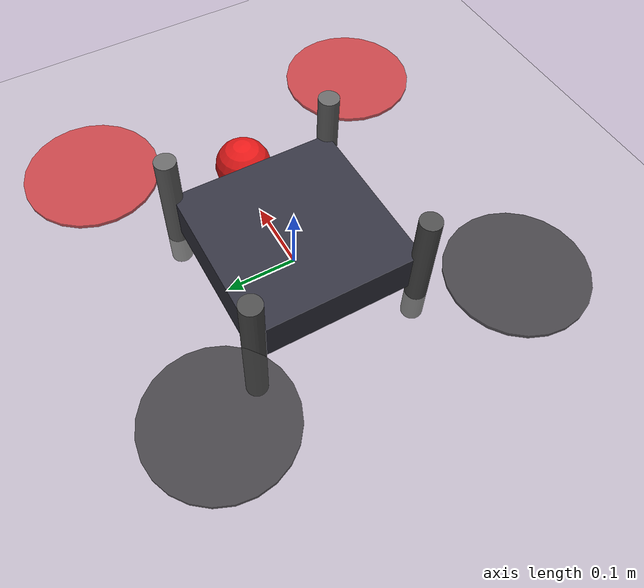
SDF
<?xml version="1.0" encoding="UTF-8"?>
<sdf version="1.6">
  <world name="drone_world">
    <!-- Directional Sun Light -->
    <include>
      <uri>model://sun</uri>
    </include>

    <!-- Ground Plane -->
    <include>
      <uri>model://ground_plane</uri>
    </include>

    <!-- Kinematic visual drone model -->
    <include>
      <uri>model://drone</uri>
      <name>drone</name>
      <pose>0 0 0 0 0 0</pose>
    </include>

    <!-- GUI Camera Position overlooking origin -->
    <gui fullscreen="0">
      <camera name="user_camera">
        <pose>-5.0 -5.0 4.0 0 0.45 0.785</pose>
        <view_controller>orbit</view_controller>
      </camera>
    </gui>
  </world>
</sdf>

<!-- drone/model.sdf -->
<sdf version="1.6">
  <model name="drone">
    <!-- Visual entity only: static prevents Gazebo physics engine from applying dynamics -->
    <static>true</static>
    <link name="base_link">
      <pose>0 0 0.05 0 0 0</pose>

      <!-- Central Body / Fuselage -->
      <visual name="body_visual">
        <geometry>
          <box>
            <size>0.24 0.24 0.06</size>
          </box>
        </geometry>
        <material>
          <ambient>0.2 0.2 0.25 1.0</ambient>
          <diffuse>0.2 0.2 0.25 1.0</diffuse>
        </material>
      </visual>

      <!-- Front Direction Marker (Bright Red Nose on +X axis) -->
      <visual name="front_marker_visual">
        <pose>0.15 0 0 0 0 0</pose>
        <geometry>
          <sphere>
            <radius>0.04</radius>
          </sphere>
        </geometry>
        <material>
          <ambient>0.9 0.1 0.1 1.0</ambient>
          <diffuse>0.9 0.1 0.1 1.0</diffuse>
        </material>
      </visual>

      <!-- Arm 1: Front-Right (+X, -Y) -->
      <visual name="arm_fr_visual">
        <pose>0.12 -0.12 0 0 0 -0.785398</pose>
        <geometry>
          <cylinder>
            <radius>0.015</radius>
            <length>0.20</length>
          </cylinder>
        </geometry>
        <material>
          <ambient>0.4 0.4 0.4 1.0</ambient>
          <diffuse>0.4 0.4 0.4 1.0</diffuse>
        </material>
      </visual>

      <!-- Arm 2: Front-Left (+X, +Y) -->
      <visual name="arm_fl_visual">
        <pose>0.12 0.12 0 0 0 0.785398</pose>
        <geometry>
          <cylinder>
            <radius>0.015</radius>
            <length>0.20</length>
          </cylinder>
        </geometry>
        <material>
          <ambient>0.4 0.4 0.4 1.0</ambient>
          <diffuse>0.4 0.4 0.4 1.0</diffuse>
        </material>
      </visual>

      <!-- Arm 3: Rear-Left (-X, +Y) -->
      <visual name="arm_rl_visual">
        <pose>-0.12 0.12 0 0 0 -0.785398</pose>
        <geometry>
          <cylinder>
            <radius>0.015</radius>
            <length>0.20</length>
          </cylinder>
        </geometry>
        <material>
          <ambient>0.3 0.3 0.3 1.0</ambient>
          <diffuse>0.3 0.3 0.3 1.0</diffuse>
        </material>
      </visual>

      <!-- Arm 4: Rear-Right (-X, -Y) -->
      <visual name="arm_rr_visual">
        <pose>-0.12 -0.12 0 0 0 0.785398</pose>
        <geometry>
          <cylinder>
            <radius>0.015</radius>
            <length>0.20</length>
          </cylinder>
        </geometry>
        <material>
          <ambient>0.3 0.3 0.3 1.0</ambient>
          <diffuse>0.3 0.3 0.3 1.0</diffuse>
        </material>
      </visual>

      <!-- Rotor 1: Front-Right (+X, -Y) -->
      <visual name="rotor_fr_visual">
        <pose>0.20 -0.20 0.04 0 0 0</pose>
        <geometry>
          <cylinder>
            <radius>0.09</radius>
            <length>0.005</length>
          </cylinder>
        </geometry>
        <material>
          <ambient>0.8 0.2 0.2 0.8</ambient>
          <diffuse>0.8 0.2 0.2 0.8</diffuse>
        </material>
      </visual>

      <!-- Rotor 2: Front-Left (+X, +Y) -->
      <visual name="rotor_fl_visual">
        <pose>0.20 0.20 0.04 0 0 0</pose>
        <geometry>
          <cylinder>
            <radius>0.09</radius>
            <length>0.005</length>
          </cylinder>
        </geometry>
        <material>
          <ambient>0.8 0.2 0.2 0.8</ambient>
          <diffuse>0.8 0.2 0.2 0.8</diffuse>
        </material>
      </visual>

      <!-- Rotor 3: Rear-Left (-X, +Y) -->
      <visual name="rotor_rl_visual">
        <pose>-0.20 0.20 0.04 0 0 0</pose>
        <geometry>
          <cylinder>
            <radius>0.09</radius>
            <length>0.005</length>
          </cylinder>
        </geometry>
        <material>
          <ambient>0.2 0.2 0.2 0.8</ambient>
          <diffuse>0.2 0.2 0.2 0.8</diffuse>
        </material>
      </visual>

      <!-- Rotor 4: Rear-Right (-X, -Y) -->
      <visual name="rotor_rr_visual">
        <pose>-0.20 -0.20 0.04 0 0 0</pose>
        <geometry>
          <cylinder>
            <radius>0.09</radius>
            <length>0.005</length>
          </cylinder>
        </geometry>
        <material>
          <ambient>0.2 0.2 0.2 0.8</ambient>
          <diffuse>0.2 0.2 0.2 0.8</diffuse>
        </material>
      </visual>
    </link>
  </model>
</sdf>
